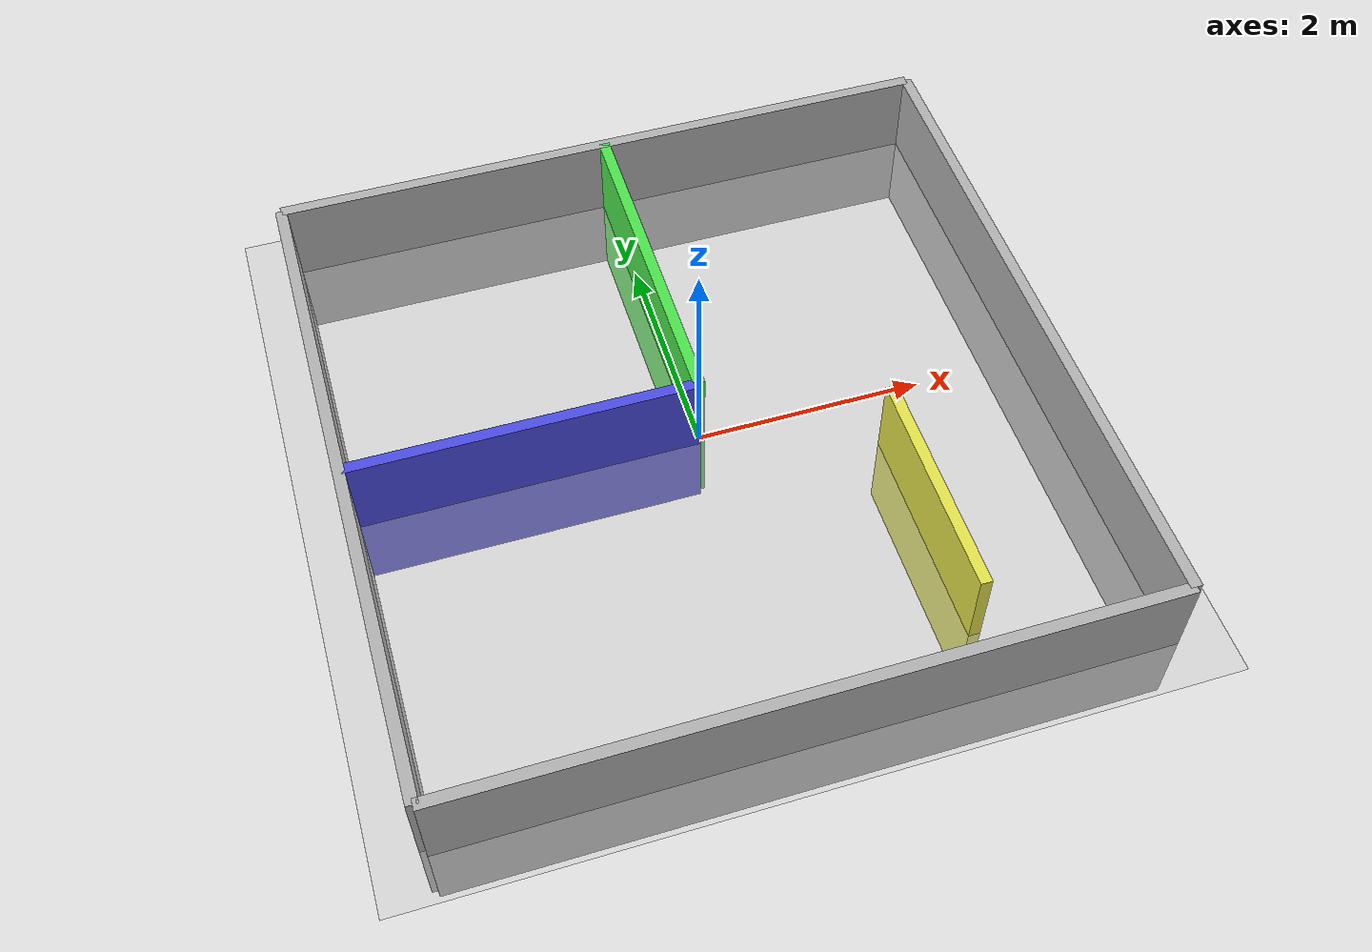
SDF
<?xml version="1.0" ?>
<sdf version="1.6">
  <world name="milo_maze">
    <!-- Suelo y luz -->
    <include>
      <uri>model://ground_plane</uri>
    </include>
    <include>
      <uri>model://sun</uri>
    </include>

    <model name="wall_north">
      <pose>0 3 0 0 0 0</pose>
      <link name="link">
        <collision name="collision">
          <geometry><box><size>6 0.1 1.5</size></box></geometry>
        </collision>
        <visual name="visual">
          <geometry><box><size>6 0.1 1.5</size></box></geometry>
          <material><ambient>0.7 0.7 0.7 1</ambient></material>
        </visual>
      </link>
    </model>

    <model name="wall_south">
      <pose>0 -3 0 0 0 0</pose>
      <link name="link">
        <collision name="collision">
          <geometry><box><size>6 0.1 1.5</size></box></geometry>
        </collision>
        <visual name="visual">
          <geometry><box><size>6 0.1 1.5</size></box></geometry>
          <material><ambient>0.7 0.7 0.7 1</ambient></material>
        </visual>
      </link>
    </model>

    <model name="wall_east">
      <pose>3 0 0 0 0 1.57</pose>
      <link name="link">
        <collision name="collision">
          <geometry><box><size>6 0.1 1.5</size></box></geometry>
        </collision>
        <visual name="visual">
          <geometry><box><size>6 0.1 1.5</size></box></geometry>
          <material><ambient>0.7 0.7 0.7 1</ambient></material>
        </visual>
      </link>
    </model>

    <model name="wall_west">
      <pose>-3 0 0 0 0 1.57</pose>
      <link name="link">
        <collision name="collision">
          <geometry><box><size>6 0.1 1.5</size></box></geometry>
        </collision>
        <visual name="visual">
          <geometry><box><size>6 0.1 1.5</size></box></geometry>
          <material><ambient>0.7 0.7 0.7 1</ambient></material>
        </visual>
      </link>
    </model>

    <model name="wall_inner1">
      <pose>-1.5 0 0 0 0 0</pose>
      <link name="link">
        <collision name="collision">
          <geometry><box><size>3 0.1 1.5</size></box></geometry>
        </collision>
        <visual name="visual">
          <geometry><box><size>3 0.1 1.5</size></box></geometry>
          <material><ambient>0.3 0.3 0.9 1</ambient></material>
        </visual>
      </link>
    </model>

    <model name="wall_inner2">
      <pose>0 1.5 0 0 0 1.57</pose>
      <link name="link">
        <collision name="collision">
          <geometry><box><size>3 0.1 1.5</size></box></geometry>
        </collision>
        <visual name="visual">
          <geometry><box><size>3 0.1 1.5</size></box></geometry>
          <material><ambient>0.3 0.9 0.3 1</ambient></material>
        </visual>
      </link>
    </model>

    <model name="wall_inner3">
      <pose>1.5 -1.5 0 0 0 1.57</pose>
      <link name="link">
        <collision name="collision">
          <geometry><box><size>2 0.1 1.5</size></box></geometry>
        </collision>
        <visual name="visual">
          <geometry><box><size>2 0.1 1.5</size></box></geometry>
          <material><ambient>0.9 0.9 0.3 1</ambient></material>
        </visual>
      </link>
    </model>

  </world>
</sdf>
